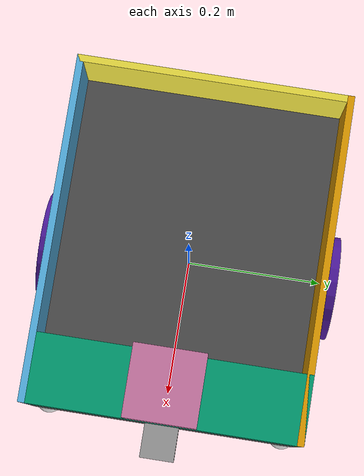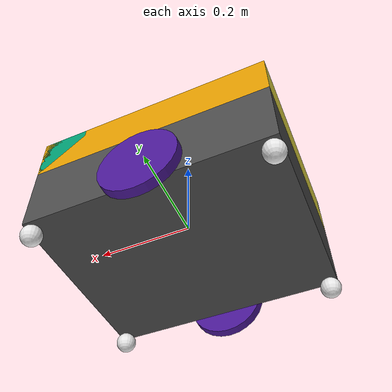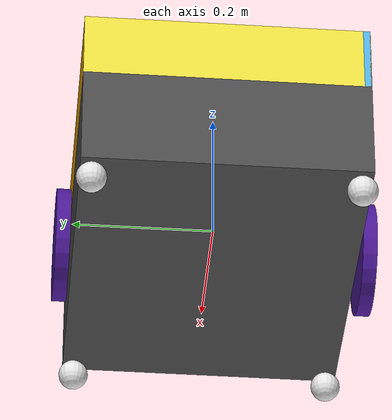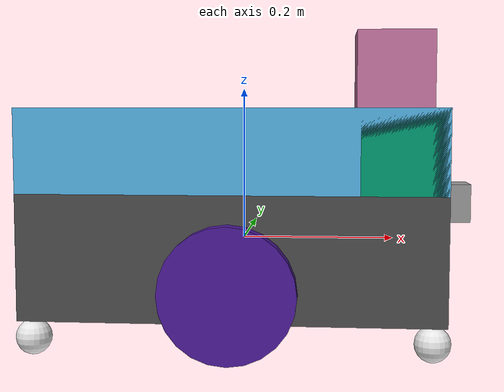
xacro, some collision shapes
<?xml version='1.0'?>

<robot name="warehouse_robot"
  xmlns:xacro="http://www.ros.org/wiki/xacro">

  <!-- default meshes dir (can be overridden by launch passing meshes_dir:=...) -->
  <xacro:property name="meshes_dir" value="$(find warehouse_robot)/models/meshes"/>

  <!-- Define general robot properties -->
  <xacro:property name="base_chassis_mass" value="15.0"/>
  <xacro:property name="base_chassis_length" value="0.5"/>
  <xacro:property name="base_chassis_width" value="0.4"/>
  <xacro:property name="base_chassis_height" value="0.15"/>

  <xacro:property name="wheel_radius" value="0.08"/>
  <xacro:property name="wheel_length" value="0.02"/>
  <xacro:property name="wheel_mass" value="1.0"/>

  <xacro:property name="caster_radius" value="${(wheel_radius-base_chassis_height/4)/2}"/>
  <xacro:property name="caster_mass" value="0.1"/>

  <!-- Include gazebo properties (the file you store as models/urdf/warehouse_robot.gazebo) -->
  <xacro:include filename="$(find warehouse_robot)/models/urdf/warehouse_robot.gazebo" />

  <!-- Define inertia macros  -->
  <xacro:macro name="cuboid_inertia" params="m x y z">
    <inertia ixx="${m*(y*y+z*z)/12}" ixy = "0" ixz = "0" iyy="${m*(x*x+z*z)/12}" iyz = "0" izz="${m*(x*x+y*y)/12}" />
  </xacro:macro>

  <xacro:macro name="cylinder_inertia" params="m r l">
    <inertia ixx="${m*(3*r*r+l*l)/12}" ixy = "0" ixz = "0" iyy="${m*(3*r*r+l*l)/12}" iyz = "0" izz="${m*r*r/2}" />
  </xacro:macro>

  <xacro:macro name="sphere_inertia" params="m r">
    <inertia ixx="${2*m*r*r/5}" ixy = "0" ixz = "0" iyy="${2*m*r*r/5}" iyz = "0" izz="${2*m*r*r/5}" />
  </xacro:macro>

  <!-- Define a wheel macro -->
  <xacro:macro name="wheel" params="position_name direction_factor">
    <link name='${position_name}_wheel'>
      <inertial>
        <mass value="${wheel_mass}"/>
        <origin xyz="0.0 0 0" rpy=" 0 1.5707 1.5707"/>
        <xacro:cylinder_inertia r="${wheel_radius}" m="${wheel_mass}" l="${wheel_length}" />
      </inertial>

      <collision name='collision'>
        <origin xyz="0.0 0 0" rpy=" 0 1.5707 1.5707"/>
        <geometry>
          <cylinder radius="${wheel_radius}" length="${wheel_length}" />
        </geometry>
      </collision>

      <visual name='${position_name}_wheel_visual'>
        <origin xyz="0.0 0 0" rpy=" 0 1.5707 1.5707"/>
        <geometry>
          <cylinder radius="${wheel_radius}" length="${wheel_length}" />
        </geometry>
      </visual>
    </link>

    <joint type="continuous" name="${position_name}_wheel_hinge">
      <origin xyz="0 ${direction_factor*((base_chassis_width + wheel_length)/2 +0.005)} ${-1.0*base_chassis_height/4}" rpy="0 0 0"/>
      <child link="${position_name}_wheel"/>
      <parent link="base_chassis"/>
      <axis xyz="0 1 0" rpy="0 0 0"/>
      <dynamics damping="0" friction="1.0"/>
    </joint>
  </xacro:macro>

  <!-- Define caster macro -->
  <xacro:macro name="ball_caster" params="position_name direction_x_factor direction_y_factor">
    <link name='${position_name}_caster'>
      <inertial>
        <mass value="${caster_mass}"/>
        <origin xyz="0 0 0" rpy=" 0 0 0"/>
        <xacro:sphere_inertia r="${caster_radius}" m="${caster_mass}" />
      </inertial>

      <collision name='collision'>
        <origin xyz="0 0 0" rpy=" 0 0 0"/>
        <geometry>
          <sphere radius="${caster_radius}" />
        </geometry>
      </collision>

      <visual name='${position_name}_caster_visual'>
        <origin xyz="0 0 0" rpy=" 0 0 0"/>
        <geometry>
          <sphere radius="${caster_radius}" />
        </geometry>
      </visual>
    </link>

    <joint type="continuous" name="${position_name}_caster_hinge">
      <origin xyz="${direction_x_factor*((base_chassis_length - caster_radius)/2 -0.005)} ${direction_y_factor*((base_chassis_width - caster_radius)/2 -0.005)} ${-1.0*(base_chassis_height/2+caster_radius)}" rpy="0 0 0"/>
      <child link="${position_name}_caster"/>
      <parent link="base_chassis"/>
      <axis xyz="1 1 1" rpy="0 0 0"/>
      <dynamics damping="0" friction="0"/>
    </joint>
  </xacro:macro>

  <!-- Define a container wall macro -->
  <xacro:macro name="container_wall" params="wall_name wall_mass wall_thick wall_height is_y is_x direction_x_factor direction_y_factor">
    <link name='${wall_name}_container_side'>
      <origin xyz="0 0 0 0 0 0" rpy="0 0 0"/>

      <inertial>
        <mass value="${wall_mass}"/>
        <origin xyz="0 0 0" rpy=" 0 0 0"/>
        <xacro:cuboid_inertia m="${wall_mass}" x="${is_y*wall_thick + is_x*base_chassis_length}" y="${is_x*wall_thick + is_y*base_chassis_width}" z="${wall_height}" />
      </inertial>

      <collision name='collision'>
        <origin xyz="0 0 0" rpy=" 0 0 0"/>
        <geometry>
          <box size="${is_y*wall_thick + is_x*base_chassis_length} ${is_x*wall_thick + is_y*base_chassis_width} ${wall_height}"/>
        </geometry>
      </collision>

      <visual name='base_chassis_visual'>
        <origin xyz="0 0 0" rpy=" 0 0 0"/>
        <geometry>
          <box size="${is_y*wall_thick + is_x*base_chassis_length} ${is_x*wall_thick + is_y*base_chassis_width} ${wall_height}"/>
        </geometry>
      </visual>
    </link>

    <joint type="fixed" name="${wall_name}_container_side_hinge">
      <origin xyz="${direction_x_factor*((base_chassis_length - wall_thick)/2)} ${direction_y_factor*((base_chassis_width - wall_thick)/2)} ${((base_chassis_height+wall_height)/2)}" rpy="0 0 0"/>
      <child link="${wall_name}_container_side"/>
      <parent link="base_chassis"/>
    </joint>
  </xacro:macro>

  <!-- Robot definitions -->
  <link name="robot_footprint"></link>

  <joint name="robot_footprint_joint" type="fixed">
    <origin xyz="0 0 0" rpy="0 0 0" />
    <parent link="robot_footprint"/>
    <child link="base_chassis" />
  </joint>

  <link name='base_chassis'>
    <origin xyz="0 0 0 0 0 0" rpy="0 0 0"/>

    <inertial>
      <mass value="${base_chassis_mass}"/>
      <origin xyz="0 0 0" rpy=" 0 0 0"/>
      <xacro:cuboid_inertia m="${base_chassis_mass}" x="${base_chassis_length}" y="${base_chassis_width}" z="${base_chassis_height}" />
    </inertial>

    <collision name='collision'>
      <origin xyz="0 0 0" rpy=" 0 0 0"/>
      <geometry>
        <box size="${base_chassis_length} ${base_chassis_width} ${base_chassis_height}"/>
      </geometry>
    </collision>

    <visual name='base_chassis_visual'>
      <origin xyz="0 0 0" rpy=" 0 0 0"/>
      <geometry>
        <box size="${base_chassis_length} ${base_chassis_width} ${base_chassis_height}"/>
      </geometry>
    </visual>
  </link>

  <!-- Wheels definitions -->

  <xacro:wheel position_name="left" direction_factor="1"/>
  <xacro:wheel position_name="right" direction_factor="-1"/>

  <!-- Ball casters definitions -->
  <xacro:ball_caster position_name="front_left" direction_x_factor="1" direction_y_factor="1"/>
  <xacro:ball_caster position_name="front_right" direction_x_factor="1" direction_y_factor="-1"/>
  <xacro:ball_caster position_name="back_left" direction_x_factor="-1" direction_y_factor="1"/>
  <xacro:ball_caster position_name="back_right" direction_x_factor="-1" direction_y_factor="-1"/>

  <!-- Container definitions -->
  <xacro:container_wall wall_name="left" wall_mass="0.01" wall_thick="0.01" wall_height="0.1" is_y="0" is_x="1" direction_x_factor="0" direction_y_factor="1" />
  <xacro:container_wall wall_name="right" wall_mass="0.01" wall_thick="0.01" wall_height="0.1" is_y="0" is_x="1" direction_x_factor="0" direction_y_factor="-1" />
  <xacro:container_wall wall_name="front" wall_mass="0.01" wall_thick="0.1" wall_height="0.1" is_y="1" is_x="0" direction_x_factor="1" direction_y_factor="0" />
  <xacro:container_wall wall_name="back" wall_mass="0.01" wall_thick="0.01" wall_height="0.1" is_y="1" is_x="0" direction_x_factor="-1" direction_y_factor="0" />
  <!-- ### CAMERA ### -->

  <link name="camera_link">

    <inertial>
      <mass value="0.1"/>
      <origin xyz="0.0 0 0" rpy=" 0 0 0"/>
      <xacro:cuboid_inertia m="0.1" x="0.05" y="0.05" z="0.05" />
    </inertial>

    <collision name='camera_collision'>
      <origin xyz="0 0 0" rpy=" 0 0 0"/>
      <geometry>
        <box size="0.05 0.05 0.05"/>
      </geometry>
    </collision>

    <visual name='camera_link_visual'>
      <origin xyz="0 0 0" rpy=" 0 0 0"/>
      <geometry>
        <box size="0.05 0.05 0.05"/>
      </geometry>
    </visual>
  </link>

  <link name="camera_link_optical">
  </link>

  <joint type="fixed" name="camera_joint">
    <origin xyz="${base_chassis_length/2+0.025} 0 ${base_chassis_height/2-0.025}" rpy="0 0 0"/>
    <child link="camera_link"/>
    <parent link="base_chassis"/>
    <axis xyz="0 1 0" rpy="0 0 0.02"/>
  </joint>

  <joint name="camera_optical_joint" type="fixed">
    <origin xyz="0 0 0" rpy="-1.5707 0 -1.5707"/>
    <parent link="camera_link"/>
    <child link="camera_link_optical"/>
  </joint>

  <!-- ### LIDAR ### -->

  <link name="hokuyo">
    <inertial>
      <mass value="0.00001"/>
      <origin xyz="0.0 0 0" rpy=" 0 0 0"/>
      <xacro:cuboid_inertia m="0.00001" x="0.1" y="0.1" z="0.1" />
    </inertial>

    <collision name='hokuyo_collision'>
      <origin xyz="0 0 0" rpy=" 0 0 0"/>
      <geometry>
        <box size="0.1 0.1 0.1"/>
      </geometry>
    </collision>

    <visual name='hokuyo_visual'>
      <origin xyz="0 0 0" rpy=" 0 0 0"/>
      <geometry>
        <mesh filename="${meshes_dir}/hokuyo.dae"/>
      </geometry>
    </visual>

  </link>

  <joint type="fixed" name="hokuyo_joint">
    <origin xyz="${base_chassis_length/2-0.05} 0 ${base_chassis_height/2+0.05+0.1}" rpy="0 0 0"/>
    <child link="hokuyo"/>
    <parent link="base_chassis"/>
    <axis xyz="0 1 0" rpy="0 0 0"/>
  </joint>

</robot>
